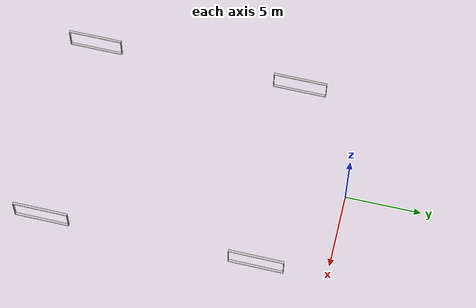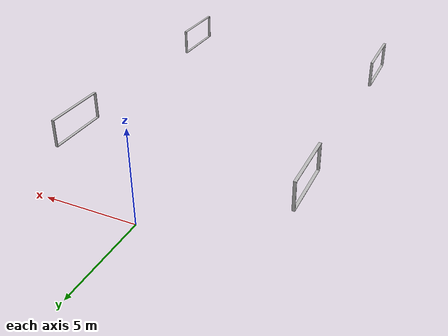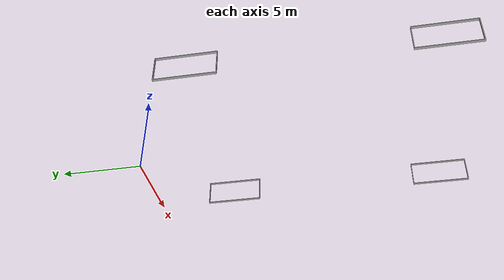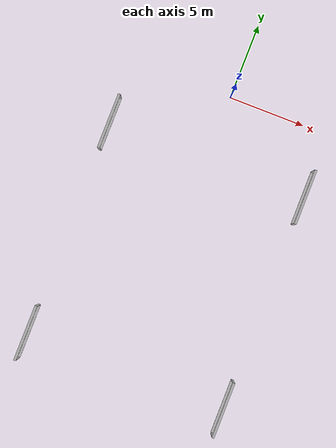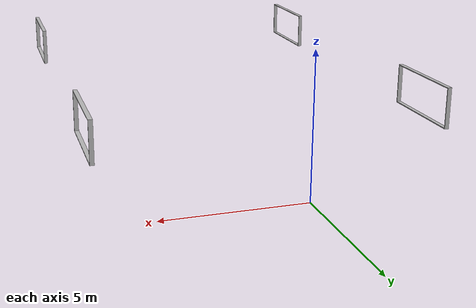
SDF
<?xml version="1.0" ?>
<sdf version="1.6">
  <model name="aws_robomaker_hospital_floor_01_windows">
    <link name="link">
      <visual name="visual">
	    <geometry>
          <mesh>
            <uri>model://aws_robomaker_hospital_floor_01_windows/meshes/aws_robomaker_hospital_floor_01_windows_visual.dae</uri>
          </mesh>
        </geometry>
      </visual>
      <collision name="collision">
        <geometry>
          <mesh>
            <uri>model://aws_robomaker_hospital_floor_01_windows/meshes/aws_robomaker_hospital_floor_01_windows_collision.dae</uri>
          </mesh>
        </geometry>
      </collision>
</link>
  <static>1</static>
  </model>
</sdf>
